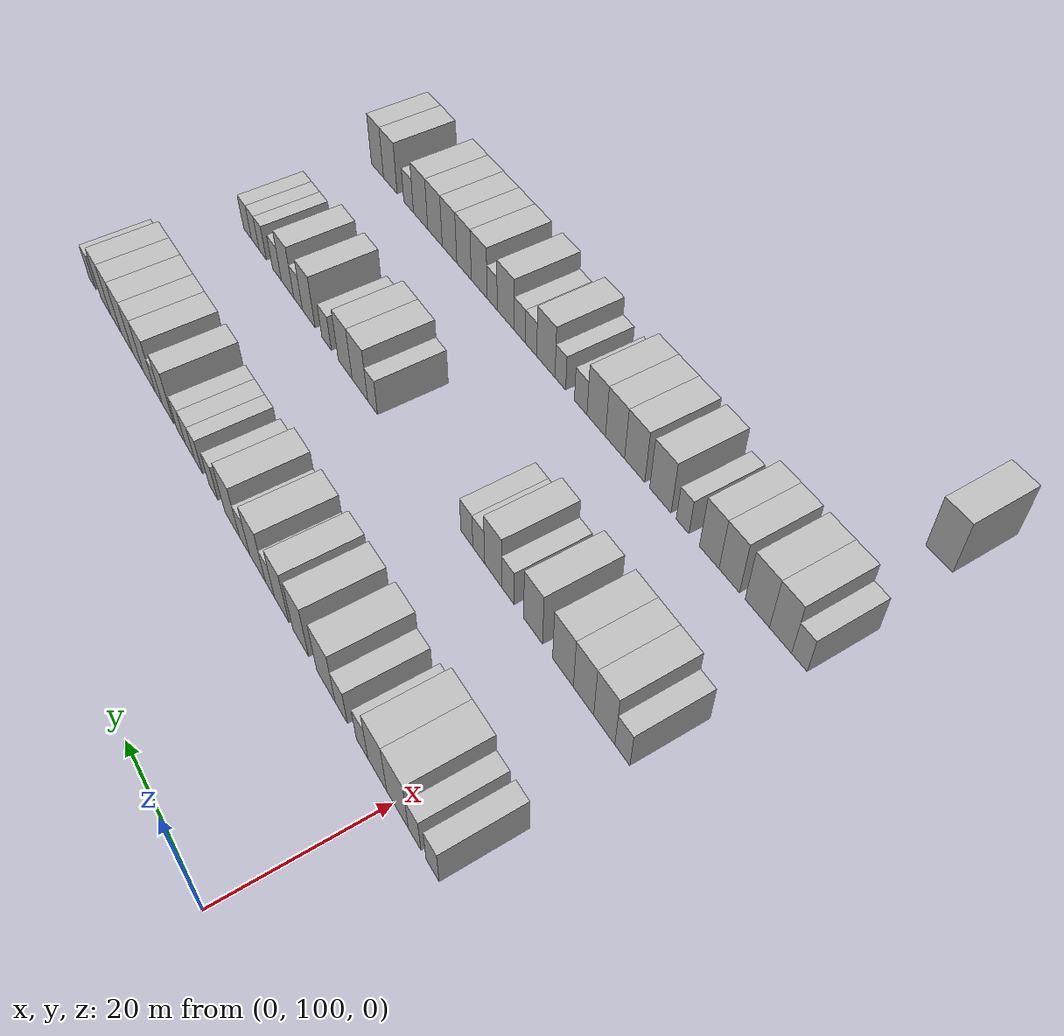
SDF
<sdf version="1.6">
 <world name="default">
  <model name="building_117">
   <static>1</static>
   <pose>25.0000 92.1162 0 0.000000 0.000000 0.000000</pose>
   <link name="link">
    <pose>0 0 3.00 0 0 0</pose>
    <collision name="collision"><geometry><box><size>10.0000 2.5571 6.0000</size></box></geometry></collision>
    <visual name="visual">
     <cast_shadows>0</cast_shadows>
     <geometry><box><size>10.0000 2.5571 6.0000</size></box></geometry>
     <material>
      <script>
       <uri>model://HANNAS_wall/materials/scripts</uri>
       <uri>model://HANNAS_wall/materials/textures</uri>
       <name>vrc/HANNAS_wall</name>
      </script>
     </material>
    </visual>
   </link>
  </model>
  <model name="building_118">
   <static>1</static>
   <pose>25.0000 95.6641 0 0.000000 0.000000 0.000000</pose>
   <link name="link">
    <pose>0 0 3.00 0 0 0</pose>
    <collision name="collision"><geometry><box><size>10.0000 2.5387 6.0000</size></box></geometry></collision>
    <visual name="visual">
     <cast_shadows>0</cast_shadows>
     <geometry><box><size>10.0000 2.5387 6.0000</size></box></geometry>
     <material>
      <script>
       <uri>model://HANNAS_wall/materials/scripts</uri>
       <uri>model://HANNAS_wall/materials/textures</uri>
       <name>vrc/HANNAS_wall</name>
      </script>
     </material>
    </visual>
   </link>
  </model>
  <model name="building_119">
   <static>1</static>
   <pose>25.0000 99.1655 0 0.000000 0.000000 0.000000</pose>
   <link name="link">
    <pose>0 0 4.50 0 0 0</pose>
    <collision name="collision"><geometry><box><size>10.0000 4.4642 9.0000</size></box></geometry></collision>
    <visual name="visual">
     <cast_shadows>0</cast_shadows>
     <geometry><box><size>10.0000 4.4642 9.0000</size></box></geometry>
     <material>
      <script>
       <uri>model://HANNAS_wall/materials/scripts</uri>
       <uri>model://HANNAS_wall/materials/textures</uri>
       <name>vrc/HANNAS_wall</name>
      </script>
     </material>
    </visual>
   </link>
  </model>
  <model name="building_120">
   <static>1</static>
   <pose>25.0000 103.4101 0 0.000000 0.000000 0.000000</pose>
   <link name="link">
    <pose>0 0 4.50 0 0 0</pose>
    <collision name="collision"><geometry><box><size>10.0000 4.0251 9.0000</size></box></geometry></collision>
    <visual name="visual">
     <cast_shadows>0</cast_shadows>
     <geometry><box><size>10.0000 4.0251 9.0000</size></box></geometry>
     <material>
      <script>
       <uri>model://HANNAS_wall/materials/scripts</uri>
       <uri>model://HANNAS_wall/materials/textures</uri>
       <name>vrc/HANNAS_wall</name>
      </script>
     </material>
    </visual>
   </link>
  </model>
  <model name="building_121">
   <static>1</static>
   <pose>25.0000 106.7136 0 0.000000 0.000000 0.000000</pose>
   <link name="link">
    <pose>0 0 3.00 0 0 0</pose>
    <collision name="collision"><geometry><box><size>10.0000 2.5818 6.0000</size></box></geometry></collision>
    <visual name="visual">
     <cast_shadows>0</cast_shadows>
     <geometry><box><size>10.0000 2.5818 6.0000</size></box></geometry>
     <material>
      <script>
       <uri>model://HANNAS_wall/materials/scripts</uri>
       <uri>model://HANNAS_wall/materials/textures</uri>
       <name>vrc/HANNAS_wall</name>
      </script>
     </material>
    </visual>
   </link>
  </model>
  <model name="building_122">
   <static>1</static>
   <pose>25.0000 111.4184 0 0.000000 0.000000 0.000000</pose>
   <link name="link">
    <pose>0 0 3.00 0 0 0</pose>
    <collision name="collision"><geometry><box><size>10.0000 2.8279 6.0000</size></box></geometry></collision>
    <visual name="visual">
     <cast_shadows>0</cast_shadows>
     <geometry><box><size>10.0000 2.8279 6.0000</size></box></geometry>
     <material>
      <script>
       <uri>model://HANNAS_wall/materials/scripts</uri>
       <uri>model://HANNAS_wall/materials/textures</uri>
       <name>vrc/HANNAS_wall</name>
      </script>
     </material>
    </visual>
   </link>
  </model>
  <model name="building_123">
   <static>1</static>
   <pose>25.0000 115.0011 0 0.000000 0.000000 0.000000</pose>
   <link name="link">
    <pose>0 0 4.50 0 0 0</pose>
    <collision name="collision"><geometry><box><size>10.0000 4.3375 9.0000</size></box></geometry></collision>
    <visual name="visual">
     <cast_shadows>0</cast_shadows>
     <geometry><box><size>10.0000 4.3375 9.0000</size></box></geometry>
     <material>
      <script>
       <uri>model://HANNAS_wall/materials/scripts</uri>
       <uri>model://HANNAS_wall/materials/textures</uri>
       <name>vrc/HANNAS_wall</name>
      </script>
     </material>
    </visual>
   </link>
  </model>
  <model name="building_124">
   <static>1</static>
   <pose>25.0000 121.1308 0 0.000000 0.000000 0.000000</pose>
   <link name="link">
    <pose>0 0 4.50 0 0 0</pose>
    <collision name="collision"><geometry><box><size>10.0000 3.9219 9.0000</size></box></geometry></collision>
    <visual name="visual">
     <cast_shadows>0</cast_shadows>
     <geometry><box><size>10.0000 3.9219 9.0000</size></box></geometry>
     <material>
      <script>
       <uri>model://HANNAS_wall/materials/scripts</uri>
       <uri>model://HANNAS_wall/materials/textures</uri>
       <name>vrc/HANNAS_wall</name>
      </script>
     </material>
    </visual>
   </link>
  </model>
  <model name="building_125">
   <static>1</static>
   <pose>25.0000 125.9438 0 0.000000 0.000000 0.000000</pose>
   <link name="link">
    <pose>0 0 4.50 0 0 0</pose>
    <collision name="collision"><geometry><box><size>10.0000 3.7041 9.0000</size></box></geometry></collision>
    <visual name="visual">
     <cast_shadows>0</cast_shadows>
     <geometry><box><size>10.0000 3.7041 9.0000</size></box></geometry>
     <material>
      <script>
       <uri>model://HANNAS_wall/materials/scripts</uri>
       <uri>model://HANNAS_wall/materials/textures</uri>
       <name>vrc/HANNAS_wall</name>
      </script>
     </material>
    </visual>
   </link>
  </model>
  <model name="building_126">
   <static>1</static>
   <pose>25.0000 129.0026 0 0.000000 0.000000 0.000000</pose>
   <link name="link">
    <pose>0 0 3.00 0 0 0</pose>
    <collision name="collision"><geometry><box><size>10.0000 2.4136 6.0000</size></box></geometry></collision>
    <visual name="visual">
     <cast_shadows>0</cast_shadows>
     <geometry><box><size>10.0000 2.4136 6.0000</size></box></geometry>
     <material>
      <script>
       <uri>model://HANNAS_wall/materials/scripts</uri>
       <uri>model://HANNAS_wall/materials/textures</uri>
       <name>vrc/HANNAS_wall</name>
      </script>
     </material>
    </visual>
   </link>
  </model>
  <model name="building_127">
   <static>1</static>
   <pose>25.0000 132.3389 0 0.000000 0.000000 0.000000</pose>
   <link name="link">
    <pose>0 0 4.50 0 0 0</pose>
    <collision name="collision"><geometry><box><size>10.0000 4.2589 9.0000</size></box></geometry></collision>
    <visual name="visual">
     <cast_shadows>0</cast_shadows>
     <geometry><box><size>10.0000 4.2589 9.0000</size></box></geometry>
     <material>
      <script>
       <uri>model://HANNAS_wall/materials/scripts</uri>
       <uri>model://HANNAS_wall/materials/textures</uri>
       <name>vrc/HANNAS_wall</name>
      </script>
     </material>
    </visual>
   </link>
  </model>
  <model name="building_128">
   <static>1</static>
   <pose>25.0000 135.8962 0 0.000000 0.000000 0.000000</pose>
   <link name="link">
    <pose>0 0 3.00 0 0 0</pose>
    <collision name="collision"><geometry><box><size>10.0000 2.8557 6.0000</size></box></geometry></collision>
    <visual name="visual">
     <cast_shadows>0</cast_shadows>
     <geometry><box><size>10.0000 2.8557 6.0000</size></box></geometry>
     <material>
      <script>
       <uri>model://HANNAS_wall/materials/scripts</uri>
       <uri>model://HANNAS_wall/materials/textures</uri>
       <name>vrc/HANNAS_wall</name>
      </script>
     </material>
    </visual>
   </link>
  </model>
  <model name="building_129">
   <static>1</static>
   <pose>25.0000 139.4365 0 0.000000 0.000000 0.000000</pose>
   <link name="link">
    <pose>0 0 4.50 0 0 0</pose>
    <collision name="collision"><geometry><box><size>10.0000 4.2249 9.0000</size></box></geometry></collision>
    <visual name="visual">
     <cast_shadows>0</cast_shadows>
     <geometry><box><size>10.0000 4.2249 9.0000</size></box></geometry>
     <material>
      <script>
       <uri>model://HANNAS_wall/materials/scripts</uri>
       <uri>model://HANNAS_wall/materials/textures</uri>
       <name>vrc/HANNAS_wall</name>
      </script>
     </material>
    </visual>
   </link>
  </model>
  <model name="building_130">
   <static>1</static>
   <pose>25.0000 144.8559 0 0.000000 0.000000 0.000000</pose>
   <link name="link">
    <pose>0 0 3.00 0 0 0</pose>
    <collision name="collision"><geometry><box><size>10.0000 2.6139 6.0000</size></box></geometry></collision>
    <visual name="visual">
     <cast_shadows>0</cast_shadows>
     <geometry><box><size>10.0000 2.6139 6.0000</size></box></geometry>
     <material>
      <script>
       <uri>model://HANNAS_wall/materials/scripts</uri>
       <uri>model://HANNAS_wall/materials/textures</uri>
       <name>vrc/HANNAS_wall</name>
      </script>
     </material>
    </visual>
   </link>
  </model>
  <model name="building_131">
   <static>1</static>
   <pose>25.0000 149.3759 0 0.000000 0.000000 0.000000</pose>
   <link name="link">
    <pose>0 0 3.00 0 0 0</pose>
    <collision name="collision"><geometry><box><size>10.0000 2.4262 6.0000</size></box></geometry></collision>
    <visual name="visual">
     <cast_shadows>0</cast_shadows>
     <geometry><box><size>10.0000 2.4262 6.0000</size></box></geometry>
     <material>
      <script>
       <uri>model://HANNAS_wall/materials/scripts</uri>
       <uri>model://HANNAS_wall/materials/textures</uri>
       <name>vrc/HANNAS_wall</name>
      </script>
     </material>
    </visual>
   </link>
  </model>
  <model name="building_132">
   <static>1</static>
   <pose>25.0000 152.0812 0 0.000000 0.000000 0.000000</pose>
   <link name="link">
    <pose>0 0 3.00 0 0 0</pose>
    <collision name="collision"><geometry><box><size>10.0000 2.9843 6.0000</size></box></geometry></collision>
    <visual name="visual">
     <cast_shadows>0</cast_shadows>
     <geometry><box><size>10.0000 2.9843 6.0000</size></box></geometry>
     <material>
      <script>
       <uri>model://HANNAS_wall/materials/scripts</uri>
       <uri>model://HANNAS_wall/materials/textures</uri>
       <name>vrc/HANNAS_wall</name>
      </script>
     </material>
    </visual>
   </link>
  </model>
  <model name="building_133">
   <static>1</static>
   <pose>25.0000 154.9230 0 0.000000 0.000000 0.000000</pose>
   <link name="link">
    <pose>0 0 3.00 0 0 0</pose>
    <collision name="collision"><geometry><box><size>10.0000 2.6992 6.0000</size></box></geometry></collision>
    <visual name="visual">
     <cast_shadows>0</cast_shadows>
     <geometry><box><size>10.0000 2.6992 6.0000</size></box></geometry>
     <material>
      <script>
       <uri>model://HANNAS_wall/materials/scripts</uri>
       <uri>model://HANNAS_wall/materials/textures</uri>
       <name>vrc/HANNAS_wall</name>
      </script>
     </material>
    </visual>
   </link>
  </model>
  <model name="building_134">
   <static>1</static>
   <pose>25.0000 159.1195 0 0.000000 0.000000 0.000000</pose>
   <link name="link">
    <pose>0 0 4.50 0 0 0</pose>
    <collision name="collision"><geometry><box><size>10.0000 3.6939 9.0000</size></box></geometry></collision>
    <visual name="visual">
     <cast_shadows>0</cast_shadows>
     <geometry><box><size>10.0000 3.6939 9.0000</size></box></geometry>
     <material>
      <script>
       <uri>model://HANNAS_wall/materials/scripts</uri>
       <uri>model://HANNAS_wall/materials/textures</uri>
       <name>vrc/HANNAS_wall</name>
      </script>
     </material>
    </visual>
   </link>
  </model>
  <model name="building_135">
   <static>1</static>
   <pose>25.0000 162.1956 0 0.000000 0.000000 0.000000</pose>
   <link name="link">
    <pose>0 0 3.00 0 0 0</pose>
    <collision name="collision"><geometry><box><size>10.0000 2.4583 6.0000</size></box></geometry></collision>
    <visual name="visual">
     <cast_shadows>0</cast_shadows>
     <geometry><box><size>10.0000 2.4583 6.0000</size></box></geometry>
     <material>
      <script>
       <uri>model://HANNAS_wall/materials/scripts</uri>
       <uri>model://HANNAS_wall/materials/textures</uri>
       <name>vrc/HANNAS_wall</name>
      </script>
     </material>
    </visual>
   </link>
  </model>
  <model name="building_136">
   <static>1</static>
   <pose>25.0000 165.5124 0 0.000000 0.000000 0.000000</pose>
   <link name="link">
    <pose>0 0 4.50 0 0 0</pose>
    <collision name="collision"><geometry><box><size>10.0000 4.1753 9.0000</size></box></geometry></collision>
    <visual name="visual">
     <cast_shadows>0</cast_shadows>
     <geometry><box><size>10.0000 4.1753 9.0000</size></box></geometry>
     <material>
      <script>
       <uri>model://HANNAS_wall/materials/scripts</uri>
       <uri>model://HANNAS_wall/materials/textures</uri>
       <name>vrc/HANNAS_wall</name>
      </script>
     </material>
    </visual>
   </link>
  </model>
  <model name="building_137">
   <static>1</static>
   <pose>25.0000 169.4644 0 0.000000 0.000000 0.000000</pose>
   <link name="link">
    <pose>0 0 4.50 0 0 0</pose>
    <collision name="collision"><geometry><box><size>10.0000 3.7287 9.0000</size></box></geometry></collision>
    <visual name="visual">
     <cast_shadows>0</cast_shadows>
     <geometry><box><size>10.0000 3.7287 9.0000</size></box></geometry>
     <material>
      <script>
       <uri>model://HANNAS_wall/materials/scripts</uri>
       <uri>model://HANNAS_wall/materials/textures</uri>
       <name>vrc/HANNAS_wall</name>
      </script>
     </material>
    </visual>
   </link>
  </model>
  <model name="building_138">
   <static>1</static>
   <pose>25.0000 173.4537 0 0.000000 0.000000 0.000000</pose>
   <link name="link">
    <pose>0 0 4.50 0 0 0</pose>
    <collision name="collision"><geometry><box><size>10.0000 4.2499 9.0000</size></box></geometry></collision>
    <visual name="visual">
     <cast_shadows>0</cast_shadows>
     <geometry><box><size>10.0000 4.2499 9.0000</size></box></geometry>
     <material>
      <script>
       <uri>model://HANNAS_wall/materials/scripts</uri>
       <uri>model://HANNAS_wall/materials/textures</uri>
       <name>vrc/HANNAS_wall</name>
      </script>
     </material>
    </visual>
   </link>
  </model>
  <model name="building_139">
   <static>1</static>
   <pose>25.0000 177.4916 0 0.000000 0.000000 0.000000</pose>
   <link name="link">
    <pose>0 0 4.50 0 0 0</pose>
    <collision name="collision"><geometry><box><size>10.0000 3.8257 9.0000</size></box></geometry></collision>
    <visual name="visual">
     <cast_shadows>0</cast_shadows>
     <geometry><box><size>10.0000 3.8257 9.0000</size></box></geometry>
     <material>
      <script>
       <uri>model://HANNAS_wall/materials/scripts</uri>
       <uri>model://HANNAS_wall/materials/textures</uri>
       <name>vrc/HANNAS_wall</name>
      </script>
     </material>
    </visual>
   </link>
  </model>
  <model name="building_140">
   <static>1</static>
   <pose>25.0000 181.2812 0 0.000000 0.000000 0.000000</pose>
   <link name="link">
    <pose>0 0 4.50 0 0 0</pose>
    <collision name="collision"><geometry><box><size>10.0000 3.7535 9.0000</size></box></geometry></collision>
    <visual name="visual">
     <cast_shadows>0</cast_shadows>
     <geometry><box><size>10.0000 3.7535 9.0000</size></box></geometry>
     <material>
      <script>
       <uri>model://HANNAS_wall/materials/scripts</uri>
       <uri>model://HANNAS_wall/materials/textures</uri>
       <name>vrc/HANNAS_wall</name>
      </script>
     </material>
    </visual>
   </link>
  </model>
  <model name="building_141">
   <static>1</static>
   <pose>25.0000 186.4557 0 0.000000 0.000000 0.000000</pose>
   <link name="link">
    <pose>0 0 3.00 0 0 0</pose>
    <collision name="collision"><geometry><box><size>10.0000 2.5956 6.0000</size></box></geometry></collision>
    <visual name="visual">
     <cast_shadows>0</cast_shadows>
     <geometry><box><size>10.0000 2.5956 6.0000</size></box></geometry>
     <material>
      <script>
       <uri>model://HANNAS_wall/materials/scripts</uri>
       <uri>model://HANNAS_wall/materials/textures</uri>
       <name>vrc/HANNAS_wall</name>
      </script>
     </material>
    </visual>
   </link>
  </model>
  <model name="building_298">
   <static>1</static>
   <pose>47.0000 92.4956 0 0.000000 0.000000 0.000000</pose>
   <link name="link">
    <pose>0 0 3.00 0 0 0</pose>
    <collision name="collision"><geometry><box><size>10.0000 2.6661 6.0000</size></box></geometry></collision>
    <visual name="visual">
     <cast_shadows>0</cast_shadows>
     <geometry><box><size>10.0000 2.6661 6.0000</size></box></geometry>
     <material>
      <script>
       <uri>model://HANNAS_wall/materials/scripts</uri>
       <uri>model://HANNAS_wall/materials/textures</uri>
       <name>vrc/HANNAS_wall</name>
      </script>
     </material>
    </visual>
   </link>
  </model>
  <model name="building_299">
   <static>1</static>
   <pose>47.0000 95.7554 0 0.000000 0.000000 0.000000</pose>
   <link name="link">
    <pose>0 0 4.50 0 0 0</pose>
    <collision name="collision"><geometry><box><size>10.0000 3.8533 9.0000</size></box></geometry></collision>
    <visual name="visual">
     <cast_shadows>0</cast_shadows>
     <geometry><box><size>10.0000 3.8533 9.0000</size></box></geometry>
     <material>
      <script>
       <uri>model://HANNAS_wall/materials/scripts</uri>
       <uri>model://HANNAS_wall/materials/textures</uri>
       <name>vrc/HANNAS_wall</name>
      </script>
     </material>
    </visual>
   </link>
  </model>
  <model name="building_300">
   <static>1</static>
   <pose>47.0000 99.5897 0 0.000000 0.000000 0.000000</pose>
   <link name="link">
    <pose>0 0 4.50 0 0 0</pose>
    <collision name="collision"><geometry><box><size>10.0000 3.8154 9.0000</size></box></geometry></collision>
    <visual name="visual">
     <cast_shadows>0</cast_shadows>
     <geometry><box><size>10.0000 3.8154 9.0000</size></box></geometry>
     <material>
      <script>
       <uri>model://HANNAS_wall/materials/scripts</uri>
       <uri>model://HANNAS_wall/materials/textures</uri>
       <name>vrc/HANNAS_wall</name>
      </script>
     </material>
    </visual>
   </link>
  </model>
  <model name="building_301">
   <static>1</static>
   <pose>47.0000 103.5124 0 0.000000 0.000000 0.000000</pose>
   <link name="link">
    <pose>0 0 4.50 0 0 0</pose>
    <collision name="collision"><geometry><box><size>10.0000 4.0301 9.0000</size></box></geometry></collision>
    <visual name="visual">
     <cast_shadows>0</cast_shadows>
     <geometry><box><size>10.0000 4.0301 9.0000</size></box></geometry>
     <material>
      <script>
       <uri>model://HANNAS_wall/materials/scripts</uri>
       <uri>model://HANNAS_wall/materials/textures</uri>
       <name>vrc/HANNAS_wall</name>
      </script>
     </material>
    </visual>
   </link>
  </model>
  <model name="building_302">
   <static>1</static>
   <pose>47.0000 109.4373 0 0.000000 0.000000 0.000000</pose>
   <link name="link">
    <pose>0 0 4.50 0 0 0</pose>
    <collision name="collision"><geometry><box><size>10.0000 3.8196 9.0000</size></box></geometry></collision>
    <visual name="visual">
     <cast_shadows>0</cast_shadows>
     <geometry><box><size>10.0000 3.8196 9.0000</size></box></geometry>
     <material>
      <script>
       <uri>model://HANNAS_wall/materials/scripts</uri>
       <uri>model://HANNAS_wall/materials/textures</uri>
       <name>vrc/HANNAS_wall</name>
      </script>
     </material>
    </visual>
   </link>
  </model>
  <model name="building_303">
   <static>1</static>
   <pose>47.0000 114.6432 0 0.000000 0.000000 0.000000</pose>
   <link name="link">
    <pose>0 0 3.00 0 0 0</pose>
    <collision name="collision"><geometry><box><size>10.0000 2.5922 6.0000</size></box></geometry></collision>
    <visual name="visual">
     <cast_shadows>0</cast_shadows>
     <geometry><box><size>10.0000 2.5922 6.0000</size></box></geometry>
     <material>
      <script>
       <uri>model://HANNAS_wall/materials/scripts</uri>
       <uri>model://HANNAS_wall/materials/textures</uri>
       <name>vrc/HANNAS_wall</name>
      </script>
     </material>
    </visual>
   </link>
  </model>
  <model name="building_304">
   <static>1</static>
   <pose>47.0000 117.8079 0 0.000000 0.000000 0.000000</pose>
   <link name="link">
    <pose>0 0 4.50 0 0 0</pose>
    <collision name="collision"><geometry><box><size>10.0000 3.7372 9.0000</size></box></geometry></collision>
    <visual name="visual">
     <cast_shadows>0</cast_shadows>
     <geometry><box><size>10.0000 3.7372 9.0000</size></box></geometry>
     <material>
      <script>
       <uri>model://HANNAS_wall/materials/scripts</uri>
       <uri>model://HANNAS_wall/materials/textures</uri>
       <name>vrc/HANNAS_wall</name>
      </script>
     </material>
    </visual>
   </link>
  </model>
  <model name="building_305">
   <static>1</static>
   <pose>47.0000 120.9910 0 0.000000 0.000000 0.000000</pose>
   <link name="link">
    <pose>0 0 3.00 0 0 0</pose>
    <collision name="collision"><geometry><box><size>10.0000 2.6290 6.0000</size></box></geometry></collision>
    <visual name="visual">
     <cast_shadows>0</cast_shadows>
     <geometry><box><size>10.0000 2.6290 6.0000</size></box></geometry>
     <material>
      <script>
       <uri>model://HANNAS_wall/materials/scripts</uri>
       <uri>model://HANNAS_wall/materials/textures</uri>
       <name>vrc/HANNAS_wall</name>
      </script>
     </material>
    </visual>
   </link>
  </model>
  <model name="building_306">
   <static>1</static>
   <pose>47.0000 123.6646 0 0.000000 0.000000 0.000000</pose>
   <link name="link">
    <pose>0 0 3.00 0 0 0</pose>
    <collision name="collision"><geometry><box><size>10.0000 2.7182 6.0000</size></box></geometry></collision>
    <visual name="visual">
     <cast_shadows>0</cast_shadows>
     <geometry><box><size>10.0000 2.7182 6.0000</size></box></geometry>
     <material>
      <script>
       <uri>model://HANNAS_wall/materials/scripts</uri>
       <uri>model://HANNAS_wall/materials/textures</uri>
       <name>vrc/HANNAS_wall</name>
      </script>
     </material>
    </visual>
   </link>
  </model>
  <model name="building_307">
   <static>1</static>
   <pose>47.0000 146.9718 0 0.000000 0.000000 0.000000</pose>
   <link name="link">
    <pose>0 0 3.00 0 0 0</pose>
    <collision name="collision"><geometry><box><size>10.0000 2.6321 6.0000</size></box></geometry></collision>
    <visual name="visual">
     <cast_shadows>0</cast_shadows>
     <geometry><box><size>10.0000 2.6321 6.0000</size></box></geometry>
     <material>
      <script>
       <uri>model://HANNAS_wall/materials/scripts</uri>
       <uri>model://HANNAS_wall/materials/textures</uri>
       <name>vrc/HANNAS_wall</name>
      </script>
     </material>
    </visual>
   </link>
  </model>
  <model name="building_308">
   <static>1</static>
   <pose>47.0000 150.4296 0 0.000000 0.000000 0.000000</pose>
   <link name="link">
    <pose>0 0 4.50 0 0 0</pose>
    <collision name="collision"><geometry><box><size>10.0000 4.2834 9.0000</size></box></geometry></collision>
    <visual name="visual">
     <cast_shadows>0</cast_shadows>
     <geometry><box><size>10.0000 4.2834 9.0000</size></box></geometry>
     <material>
      <script>
       <uri>model://HANNAS_wall/materials/scripts</uri>
       <uri>model://HANNAS_wall/materials/textures</uri>
       <name>vrc/HANNAS_wall</name>
      </script>
     </material>
    </visual>
   </link>
  </model>
  <model name="building_309">
   <static>1</static>
   <pose>47.0000 154.5306 0 0.000000 0.000000 0.000000</pose>
   <link name="link">
    <pose>0 0 4.50 0 0 0</pose>
    <collision name="collision"><geometry><box><size>10.0000 3.9187 9.0000</size></box></geometry></collision>
    <visual name="visual">
     <cast_shadows>0</cast_shadows>
     <geometry><box><size>10.0000 3.9187 9.0000</size></box></geometry>
     <material>
      <script>
       <uri>model://HANNAS_wall/materials/scripts</uri>
       <uri>model://HANNAS_wall/materials/textures</uri>
       <name>vrc/HANNAS_wall</name>
      </script>
     </material>
    </visual>
   </link>
  </model>
  <model name="building_310">
   <static>1</static>
   <pose>47.0000 159.8828 0 0.000000 0.000000 0.000000</pose>
   <link name="link">
    <pose>0 0 3.00 0 0 0</pose>
    <collision name="collision"><geometry><box><size>10.0000 2.7856 6.0000</size></box></geometry></collision>
    <visual name="visual">
     <cast_shadows>0</cast_shadows>
     <geometry><box><size>10.0000 2.7856 6.0000</size></box></geometry>
     <material>
      <script>
       <uri>model://HANNAS_wall/materials/scripts</uri>
       <uri>model://HANNAS_wall/materials/textures</uri>
       <name>vrc/HANNAS_wall</name>
      </script>
     </material>
    </visual>
   </link>
  </model>
  <model name="building_311">
   <static>1</static>
   <pose>47.0000 165.1963 0 0.000000 0.000000 0.000000</pose>
   <link name="link">
    <pose>0 0 4.50 0 0 0</pose>
    <collision name="collision"><geometry><box><size>10.0000 3.8414 9.0000</size></box></geometry></collision>
    <visual name="visual">
     <cast_shadows>0</cast_shadows>
     <geometry><box><size>10.0000 3.8414 9.0000</size></box></geometry>
     <material>
      <script>
       <uri>model://HANNAS_wall/materials/scripts</uri>
       <uri>model://HANNAS_wall/materials/textures</uri>
       <name>vrc/HANNAS_wall</name>
      </script>
     </material>
    </visual>
   </link>
  </model>
  <model name="building_312">
   <static>1</static>
   <pose>47.0000 168.4572 0 0.000000 0.000000 0.000000</pose>
   <link name="link">
    <pose>0 0 3.00 0 0 0</pose>
    <collision name="collision"><geometry><box><size>10.0000 2.6805 6.0000</size></box></geometry></collision>
    <visual name="visual">
     <cast_shadows>0</cast_shadows>
     <geometry><box><size>10.0000 2.6805 6.0000</size></box></geometry>
     <material>
      <script>
       <uri>model://HANNAS_wall/materials/scripts</uri>
       <uri>model://HANNAS_wall/materials/textures</uri>
       <name>vrc/HANNAS_wall</name>
      </script>
     </material>
    </visual>
   </link>
  </model>
  <model name="building_313">
   <static>1</static>
   <pose>47.0000 171.7642 0 0.000000 0.000000 0.000000</pose>
   <link name="link">
    <pose>0 0 4.50 0 0 0</pose>
    <collision name="collision"><geometry><box><size>10.0000 3.9334 9.0000</size></box></geometry></collision>
    <visual name="visual">
     <cast_shadows>0</cast_shadows>
     <geometry><box><size>10.0000 3.9334 9.0000</size></box></geometry>
     <material>
      <script>
       <uri>model://HANNAS_wall/materials/scripts</uri>
       <uri>model://HANNAS_wall/materials/textures</uri>
       <name>vrc/HANNAS_wall</name>
      </script>
     </material>
    </visual>
   </link>
  </model>
  <model name="building_314">
   <static>1</static>
   <pose>47.0000 175.1797 0 0.000000 0.000000 0.000000</pose>
   <link name="link">
    <pose>0 0 3.00 0 0 0</pose>
    <collision name="collision"><geometry><box><size>10.0000 2.8977 6.0000</size></box></geometry></collision>
    <visual name="visual">
     <cast_shadows>0</cast_shadows>
     <geometry><box><size>10.0000 2.8977 6.0000</size></box></geometry>
     <material>
      <script>
       <uri>model://HANNAS_wall/materials/scripts</uri>
       <uri>model://HANNAS_wall/materials/textures</uri>
       <name>vrc/HANNAS_wall</name>
      </script>
     </material>
    </visual>
   </link>
  </model>
  <model name="building_315">
   <static>1</static>
   <pose>47.0000 179.8508 0 0.000000 0.000000 0.000000</pose>
   <link name="link">
    <pose>0 0 3.00 0 0 0</pose>
    <collision name="collision"><geometry><box><size>10.0000 2.4445 6.0000</size></box></geometry></collision>
    <visual name="visual">
     <cast_shadows>0</cast_shadows>
     <geometry><box><size>10.0000 2.4445 6.0000</size></box></geometry>
     <material>
      <script>
       <uri>model://HANNAS_wall/materials/scripts</uri>
       <uri>model://HANNAS_wall/materials/textures</uri>
       <name>vrc/HANNAS_wall</name>
      </script>
     </material>
    </visual>
   </link>
  </model>
  <model name="building_316">
   <static>1</static>
   <pose>47.0000 182.3822 0 0.000000 0.000000 0.000000</pose>
   <link name="link">
    <pose>0 0 3.00 0 0 0</pose>
    <collision name="collision"><geometry><box><size>10.0000 2.6183 6.0000</size></box></geometry></collision>
    <visual name="visual">
     <cast_shadows>0</cast_shadows>
     <geometry><box><size>10.0000 2.6183 6.0000</size></box></geometry>
     <material>
      <script>
       <uri>model://HANNAS_wall/materials/scripts</uri>
       <uri>model://HANNAS_wall/materials/textures</uri>
       <name>vrc/HANNAS_wall</name>
      </script>
     </material>
    </visual>
   </link>
  </model>
  <model name="building_317">
   <static>1</static>
   <pose>47.0000 185.0202 0 0.000000 0.000000 0.000000</pose>
   <link name="link">
    <pose>0 0 3.00 0 0 0</pose>
    <collision name="collision"><geometry><box><size>10.0000 2.6576 6.0000</size></box></geometry></collision>
    <visual name="visual">
     <cast_shadows>0</cast_shadows>
     <geometry><box><size>10.0000 2.6576 6.0000</size></box></geometry>
     <material>
      <script>
       <uri>model://HANNAS_wall/materials/scripts</uri>
       <uri>model://HANNAS_wall/materials/textures</uri>
       <name>vrc/HANNAS_wall</name>
      </script>
     </material>
    </visual>
   </link>
  </model>
  <model name="building_482">
   <static>1</static>
   <pose>69.0000 91.4781 0 0.000000 0.000000 0.000000</pose>
   <link name="link">
    <pose>0 0 3.00 0 0 0</pose>
    <collision name="collision"><geometry><box><size>10.0000 2.5737 6.0000</size></box></geometry></collision>
    <visual name="visual">
     <cast_shadows>0</cast_shadows>
     <geometry><box><size>10.0000 2.5737 6.0000</size></box></geometry>
     <material>
      <script>
       <uri>model://HANNAS_wall/materials/scripts</uri>
       <uri>model://HANNAS_wall/materials/textures</uri>
       <name>vrc/HANNAS_wall</name>
      </script>
     </material>
    </visual>
   </link>
  </model>
  <model name="building_483">
   <static>1</static>
   <pose>69.0000 94.6288 0 0.000000 0.000000 0.000000</pose>
   <link name="link">
    <pose>0 0 4.50 0 0 0</pose>
    <collision name="collision"><geometry><box><size>10.0000 3.7276 9.0000</size></box></geometry></collision>
    <visual name="visual">
     <cast_shadows>0</cast_shadows>
     <geometry><box><size>10.0000 3.7276 9.0000</size></box></geometry>
     <material>
      <script>
       <uri>model://HANNAS_wall/materials/scripts</uri>
       <uri>model://HANNAS_wall/materials/textures</uri>
       <name>vrc/HANNAS_wall</name>
      </script>
     </material>
    </visual>
   </link>
  </model>
  <model name="building_484">
   <static>1</static>
   <pose>69.0000 98.6133 0 0.000000 0.000000 0.000000</pose>
   <link name="link">
    <pose>0 0 4.50 0 0 0</pose>
    <collision name="collision"><geometry><box><size>10.0000 4.2413 9.0000</size></box></geometry></collision>
    <visual name="visual">
     <cast_shadows>0</cast_shadows>
     <geometry><box><size>10.0000 4.2413 9.0000</size></box></geometry>
     <material>
      <script>
       <uri>model://HANNAS_wall/materials/scripts</uri>
       <uri>model://HANNAS_wall/materials/textures</uri>
       <name>vrc/HANNAS_wall</name>
      </script>
     </material>
    </visual>
   </link>
  </model>
  <model name="building_485">
   <static>1</static>
   <pose>69.0000 103.5892 0 0.000000 0.000000 0.000000</pose>
   <link name="link">
    <pose>0 0 4.50 0 0 0</pose>
    <collision name="collision"><geometry><box><size>10.0000 3.7105 9.0000</size></box></geometry></collision>
    <visual name="visual">
     <cast_shadows>0</cast_shadows>
     <geometry><box><size>10.0000 3.7105 9.0000</size></box></geometry>
     <material>
      <script>
       <uri>model://HANNAS_wall/materials/scripts</uri>
       <uri>model://HANNAS_wall/materials/textures</uri>
       <name>vrc/HANNAS_wall</name>
      </script>
     </material>
    </visual>
   </link>
  </model>
  <model name="building_486">
   <static>1</static>
   <pose>69.0000 107.2648 0 0.000000 0.000000 0.000000</pose>
   <link name="link">
    <pose>0 0 4.50 0 0 0</pose>
    <collision name="collision"><geometry><box><size>10.0000 3.6407 9.0000</size></box></geometry></collision>
    <visual name="visual">
     <cast_shadows>0</cast_shadows>
     <geometry><box><size>10.0000 3.6407 9.0000</size></box></geometry>
     <material>
      <script>
       <uri>model://HANNAS_wall/materials/scripts</uri>
       <uri>model://HANNAS_wall/materials/textures</uri>
       <name>vrc/HANNAS_wall</name>
      </script>
     </material>
    </visual>
   </link>
  </model>
  <model name="building_487">
   <static>1</static>
   <pose>69.0000 112.3160 0 0.000000 0.000000 0.000000</pose>
   <link name="link">
    <pose>0 0 3.00 0 0 0</pose>
    <collision name="collision"><geometry><box><size>10.0000 2.4616 6.0000</size></box></geometry></collision>
    <visual name="visual">
     <cast_shadows>0</cast_shadows>
     <geometry><box><size>10.0000 2.4616 6.0000</size></box></geometry>
     <material>
      <script>
       <uri>model://HANNAS_wall/materials/scripts</uri>
       <uri>model://HANNAS_wall/materials/textures</uri>
       <name>vrc/HANNAS_wall</name>
      </script>
     </material>
    </visual>
   </link>
  </model>
  <model name="building_488">
   <static>1</static>
   <pose>69.0000 116.6904 0 0.000000 0.000000 0.000000</pose>
   <link name="link">
    <pose>0 0 4.50 0 0 0</pose>
    <collision name="collision"><geometry><box><size>10.0000 4.2872 9.0000</size></box></geometry></collision>
    <visual name="visual">
     <cast_shadows>0</cast_shadows>
     <geometry><box><size>10.0000 4.2872 9.0000</size></box></geometry>
     <material>
      <script>
       <uri>model://HANNAS_wall/materials/scripts</uri>
       <uri>model://HANNAS_wall/materials/textures</uri>
       <name>vrc/HANNAS_wall</name>
      </script>
     </material>
    </visual>
   </link>
  </model>
  <model name="building_489">
   <static>1</static>
   <pose>69.0000 121.9340 0 0.000000 0.000000 0.000000</pose>
   <link name="link">
    <pose>0 0 4.50 0 0 0</pose>
    <collision name="collision"><geometry><box><size>10.0000 4.2000 9.0000</size></box></geometry></collision>
    <visual name="visual">
     <cast_shadows>0</cast_shadows>
     <geometry><box><size>10.0000 4.2000 9.0000</size></box></geometry>
     <material>
      <script>
       <uri>model://HANNAS_wall/materials/scripts</uri>
       <uri>model://HANNAS_wall/materials/textures</uri>
       <name>vrc/HANNAS_wall</name>
      </script>
     </material>
    </visual>
   </link>
  </model>
  <model name="building_490">
   <static>1</static>
   <pose>69.0000 126.0741 0 0.000000 0.000000 0.000000</pose>
   <link name="link">
    <pose>0 0 4.50 0 0 0</pose>
    <collision name="collision"><geometry><box><size>10.0000 4.0804 9.0000</size></box></geometry></collision>
    <visual name="visual">
     <cast_shadows>0</cast_shadows>
     <geometry><box><size>10.0000 4.0804 9.0000</size></box></geometry>
     <material>
      <script>
       <uri>model://HANNAS_wall/materials/scripts</uri>
       <uri>model://HANNAS_wall/materials/textures</uri>
       <name>vrc/HANNAS_wall</name>
      </script>
     </material>
    </visual>
   </link>
  </model>
  <model name="building_491">
   <static>1</static>
   <pose>69.0000 130.1515 0 0.000000 0.000000 0.000000</pose>
   <link name="link">
    <pose>0 0 4.50 0 0 0</pose>
    <collision name="collision"><geometry><box><size>10.0000 4.0744 9.0000</size></box></geometry></collision>
    <visual name="visual">
     <cast_shadows>0</cast_shadows>
     <geometry><box><size>10.0000 4.0744 9.0000</size></box></geometry>
     <material>
      <script>
       <uri>model://HANNAS_wall/materials/scripts</uri>
       <uri>model://HANNAS_wall/materials/textures</uri>
       <name>vrc/HANNAS_wall</name>
      </script>
     </material>
    </visual>
   </link>
  </model>
  <model name="building_492">
   <static>1</static>
   <pose>69.0000 133.6003 0 0.000000 0.000000 0.000000</pose>
   <link name="link">
    <pose>0 0 3.00 0 0 0</pose>
    <collision name="collision"><geometry><box><size>10.0000 2.8232 6.0000</size></box></geometry></collision>
    <visual name="visual">
     <cast_shadows>0</cast_shadows>
     <geometry><box><size>10.0000 2.8232 6.0000</size></box></geometry>
     <material>
      <script>
       <uri>model://HANNAS_wall/materials/scripts</uri>
       <uri>model://HANNAS_wall/materials/textures</uri>
       <name>vrc/HANNAS_wall</name>
      </script>
     </material>
    </visual>
   </link>
  </model>
  <model name="building_493">
   <static>1</static>
   <pose>69.0000 138.2545 0 0.000000 0.000000 0.000000</pose>
   <link name="link">
    <pose>0 0 3.00 0 0 0</pose>
    <collision name="collision"><geometry><box><size>10.0000 2.4851 6.0000</size></box></geometry></collision>
    <visual name="visual">
     <cast_shadows>0</cast_shadows>
     <geometry><box><size>10.0000 2.4851 6.0000</size></box></geometry>
     <material>
      <script>
       <uri>model://HANNAS_wall/materials/scripts</uri>
       <uri>model://HANNAS_wall/materials/textures</uri>
       <name>vrc/HANNAS_wall</name>
      </script>
     </material>
    </visual>
   </link>
  </model>
  <model name="building_494">
   <static>1</static>
   <pose>69.0000 141.6663 0 0.000000 0.000000 0.000000</pose>
   <link name="link">
    <pose>0 0 4.50 0 0 0</pose>
    <collision name="collision"><geometry><box><size>10.0000 4.3384 9.0000</size></box></geometry></collision>
    <visual name="visual">
     <cast_shadows>0</cast_shadows>
     <geometry><box><size>10.0000 4.3384 9.0000</size></box></geometry>
     <material>
      <script>
       <uri>model://HANNAS_wall/materials/scripts</uri>
       <uri>model://HANNAS_wall/materials/textures</uri>
       <name>vrc/HANNAS_wall</name>
      </script>
     </material>
    </visual>
   </link>
  </model>
  <model name="building_495">
   <static>1</static>
   <pose>69.0000 145.2060 0 0.000000 0.000000 0.000000</pose>
   <link name="link">
    <pose>0 0 3.00 0 0 0</pose>
    <collision name="collision"><geometry><box><size>10.0000 2.7411 6.0000</size></box></geometry></collision>
    <visual name="visual">
     <cast_shadows>0</cast_shadows>
     <geometry><box><size>10.0000 2.7411 6.0000</size></box></geometry>
     <material>
      <script>
       <uri>model://HANNAS_wall/materials/scripts</uri>
       <uri>model://HANNAS_wall/materials/textures</uri>
       <name>vrc/HANNAS_wall</name>
      </script>
     </material>
    </visual>
   </link>
  </model>
  <model name="building_496">
   <static>1</static>
   <pose>69.0000 147.9722 0 0.000000 0.000000 0.000000</pose>
   <link name="link">
    <pose>0 0 3.00 0 0 0</pose>
    <collision name="collision"><geometry><box><size>10.0000 2.7912 6.0000</size></box></geometry></collision>
    <visual name="visual">
     <cast_shadows>0</cast_shadows>
     <geometry><box><size>10.0000 2.7912 6.0000</size></box></geometry>
     <material>
      <script>
       <uri>model://HANNAS_wall/materials/scripts</uri>
       <uri>model://HANNAS_wall/materials/textures</uri>
       <name>vrc/HANNAS_wall</name>
      </script>
     </material>
    </visual>
   </link>
  </model>
  <model name="building_497">
   <static>1</static>
   <pose>69.0000 151.5199 0 0.000000 0.000000 0.000000</pose>
   <link name="link">
    <pose>0 0 4.50 0 0 0</pose>
    <collision name="collision"><geometry><box><size>10.0000 4.3042 9.0000</size></box></geometry></collision>
    <visual name="visual">
     <cast_shadows>0</cast_shadows>
     <geometry><box><size>10.0000 4.3042 9.0000</size></box></geometry>
     <material>
      <script>
       <uri>model://HANNAS_wall/materials/scripts</uri>
       <uri>model://HANNAS_wall/materials/textures</uri>
       <name>vrc/HANNAS_wall</name>
      </script>
     </material>
    </visual>
   </link>
  </model>
  <model name="building_498">
   <static>1</static>
   <pose>69.0000 154.9767 0 0.000000 0.000000 0.000000</pose>
   <link name="link">
    <pose>0 0 3.00 0 0 0</pose>
    <collision name="collision"><geometry><box><size>10.0000 2.6094 6.0000</size></box></geometry></collision>
    <visual name="visual">
     <cast_shadows>0</cast_shadows>
     <geometry><box><size>10.0000 2.6094 6.0000</size></box></geometry>
     <material>
      <script>
       <uri>model://HANNAS_wall/materials/scripts</uri>
       <uri>model://HANNAS_wall/materials/textures</uri>
       <name>vrc/HANNAS_wall</name>
      </script>
     </material>
    </visual>
   </link>
  </model>
  <model name="building_499">
   <static>1</static>
   <pose>69.0000 158.3808 0 0.000000 0.000000 0.000000</pose>
   <link name="link">
    <pose>0 0 4.50 0 0 0</pose>
    <collision name="collision"><geometry><box><size>10.0000 4.1988 9.0000</size></box></geometry></collision>
    <visual name="visual">
     <cast_shadows>0</cast_shadows>
     <geometry><box><size>10.0000 4.1988 9.0000</size></box></geometry>
     <material>
      <script>
       <uri>model://HANNAS_wall/materials/scripts</uri>
       <uri>model://HANNAS_wall/materials/textures</uri>
       <name>vrc/HANNAS_wall</name>
      </script>
     </material>
    </visual>
   </link>
  </model>
  <model name="building_500">
   <static>1</static>
   <pose>69.0000 162.4697 0 0.000000 0.000000 0.000000</pose>
   <link name="link">
    <pose>0 0 4.50 0 0 0</pose>
    <collision name="collision"><geometry><box><size>10.0000 3.9790 9.0000</size></box></geometry></collision>
    <visual name="visual">
     <cast_shadows>0</cast_shadows>
     <geometry><box><size>10.0000 3.9790 9.0000</size></box></geometry>
     <material>
      <script>
       <uri>model://HANNAS_wall/materials/scripts</uri>
       <uri>model://HANNAS_wall/materials/textures</uri>
       <name>vrc/HANNAS_wall</name>
      </script>
     </material>
    </visual>
   </link>
  </model>
  <model name="building_501">
   <static>1</static>
   <pose>69.0000 166.4872 0 0.000000 0.000000 0.000000</pose>
   <link name="link">
    <pose>0 0 4.50 0 0 0</pose>
    <collision name="collision"><geometry><box><size>10.0000 4.0560 9.0000</size></box></geometry></collision>
    <visual name="visual">
     <cast_shadows>0</cast_shadows>
     <geometry><box><size>10.0000 4.0560 9.0000</size></box></geometry>
     <material>
      <script>
       <uri>model://HANNAS_wall/materials/scripts</uri>
       <uri>model://HANNAS_wall/materials/textures</uri>
       <name>vrc/HANNAS_wall</name>
      </script>
     </material>
    </visual>
   </link>
  </model>
  <model name="building_502">
   <static>1</static>
   <pose>69.0000 170.5893 0 0.000000 0.000000 0.000000</pose>
   <link name="link">
    <pose>0 0 4.50 0 0 0</pose>
    <collision name="collision"><geometry><box><size>10.0000 4.1482 9.0000</size></box></geometry></collision>
    <visual name="visual">
     <cast_shadows>0</cast_shadows>
     <geometry><box><size>10.0000 4.1482 9.0000</size></box></geometry>
     <material>
      <script>
       <uri>model://HANNAS_wall/materials/scripts</uri>
       <uri>model://HANNAS_wall/materials/textures</uri>
       <name>vrc/HANNAS_wall</name>
      </script>
     </material>
    </visual>
   </link>
  </model>
  <model name="building_503">
   <static>1</static>
   <pose>69.0000 174.7733 0 0.000000 0.000000 0.000000</pose>
   <link name="link">
    <pose>0 0 4.50 0 0 0</pose>
    <collision name="collision"><geometry><box><size>10.0000 4.2199 9.0000</size></box></geometry></collision>
    <visual name="visual">
     <cast_shadows>0</cast_shadows>
     <geometry><box><size>10.0000 4.2199 9.0000</size></box></geometry>
     <material>
      <script>
       <uri>model://HANNAS_wall/materials/scripts</uri>
       <uri>model://HANNAS_wall/materials/textures</uri>
       <name>vrc/HANNAS_wall</name>
      </script>
     </material>
    </visual>
   </link>
  </model>
  <model name="building_504">
   <static>1</static>
   <pose>69.0000 178.3392 0 0.000000 0.000000 0.000000</pose>
   <link name="link">
    <pose>0 0 3.00 0 0 0</pose>
    <collision name="collision"><geometry><box><size>10.0000 2.9118 6.0000</size></box></geometry></collision>
    <visual name="visual">
     <cast_shadows>0</cast_shadows>
     <geometry><box><size>10.0000 2.9118 6.0000</size></box></geometry>
     <material>
      <script>
       <uri>model://HANNAS_wall/materials/scripts</uri>
       <uri>model://HANNAS_wall/materials/textures</uri>
       <name>vrc/HANNAS_wall</name>
      </script>
     </material>
    </visual>
   </link>
  </model>
  <model name="building_505">
   <static>1</static>
   <pose>69.0000 183.9210 0 0.000000 0.000000 0.000000</pose>
   <link name="link">
    <pose>0 0 4.50 0 0 0</pose>
    <collision name="collision"><geometry><box><size>10.0000 4.2518 9.0000</size></box></geometry></collision>
    <visual name="visual">
     <cast_shadows>0</cast_shadows>
     <geometry><box><size>10.0000 4.2518 9.0000</size></box></geometry>
     <material>
      <script>
       <uri>model://HANNAS_wall/materials/scripts</uri>
       <uri>model://HANNAS_wall/materials/textures</uri>
       <name>vrc/HANNAS_wall</name>
      </script>
     </material>
    </visual>
   </link>
  </model>
  <model name="building_506">
   <static>1</static>
   <pose>69.0000 187.9515 0 0.000000 0.000000 0.000000</pose>
   <link name="link">
    <pose>0 0 4.50 0 0 0</pose>
    <collision name="collision"><geometry><box><size>10.0000 3.8092 9.0000</size></box></geometry></collision>
    <visual name="visual">
     <cast_shadows>0</cast_shadows>
     <geometry><box><size>10.0000 3.8092 9.0000</size></box></geometry>
     <material>
      <script>
       <uri>model://HANNAS_wall/materials/scripts</uri>
       <uri>model://HANNAS_wall/materials/textures</uri>
       <name>vrc/HANNAS_wall</name>
      </script>
     </material>
    </visual>
   </link>
  </model>
  <model name="building_680">
   <static>1</static>
   <pose>91.0000 93.6490 0 0.000000 0.000000 0.000000</pose>
   <link name="link">
    <pose>0 0 4.50 0 0 0</pose>
    <collision name="collision"><geometry><box><size>10.0000 4.3394 9.0000</size></box></geometry></collision>
    <visual name="visual">
     <cast_shadows>0</cast_shadows>
     <geometry><box><size>10.0000 4.3394 9.0000</size></box></geometry>
     <material>
      <script>
       <uri>model://HANNAS_wall/materials/scripts</uri>
       <uri>model://HANNAS_wall/materials/textures</uri>
       <name>vrc/HANNAS_wall</name>
      </script>
     </material>
    </visual>
   </link>
  </model>
 </world>
</sdf>
